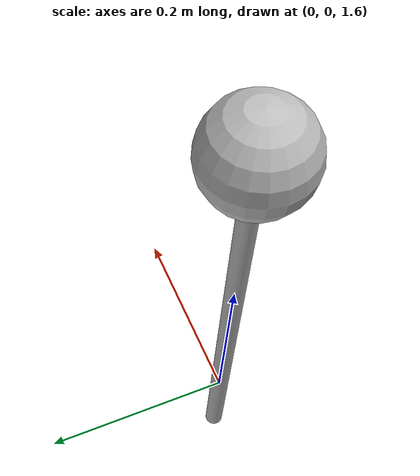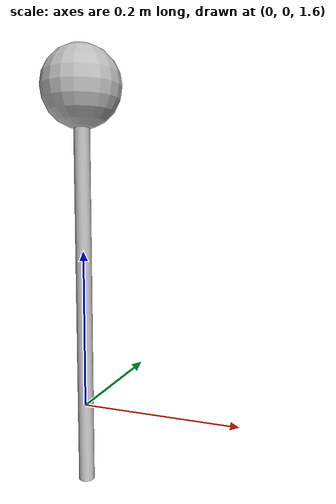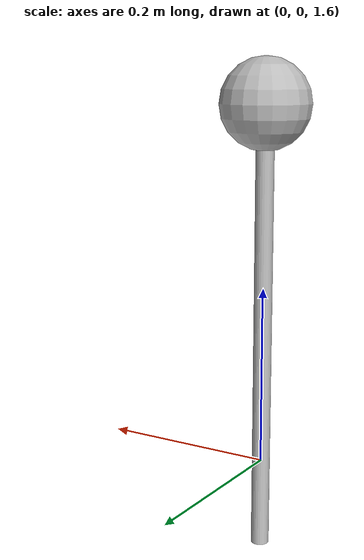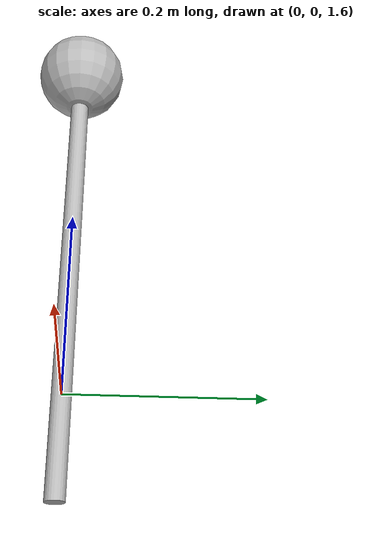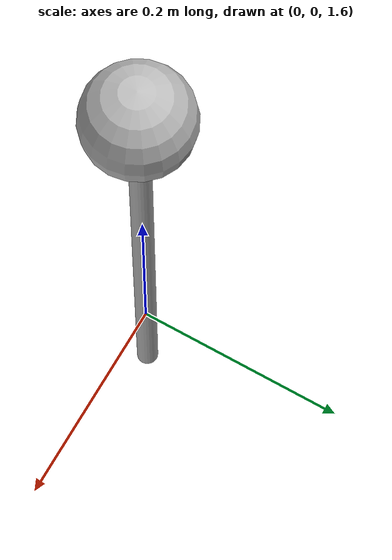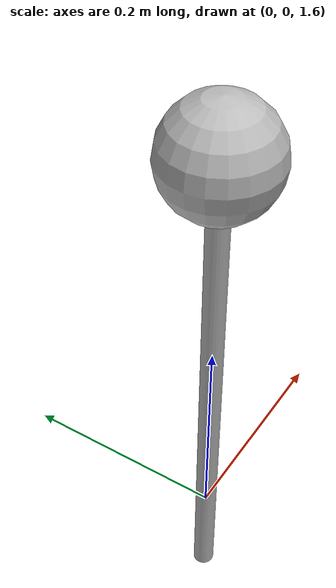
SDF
<?xml version="1.0"?>
<sdf version="1.6">
    <model name="model_1">
      <link name="link_1">
        <pose>0 0 2.0 0 0 0</pose>
        <inertial>
          <inertia>
            <ixx>0.100000</ixx>
            <ixy>0.000000</ixy>
            <ixz>0.000000</ixz>
            <iyy>0.100000</iyy>
            <iyz>0.000000</iyz>
            <izz>0.100000</izz>
          </inertia>
          <mass>5.000000</mass>
        </inertial>
        <visual name="visual_sphere">
          <geometry>
            <sphere>
              <radius>0.050000</radius>
            </sphere>
          </geometry>
        </visual>
        <visual name="visual_cylinder">
          <pose>0 0 -0.25 0 0 0</pose>
          <geometry>
            <cylinder>
              <radius>0.0100000</radius>
              <length>0.5</length>
            </cylinder>
          </geometry>
        </visual>
        <collision name="collision_sphere">
          <max_contacts>250</max_contacts>
          <geometry>
            <sphere>
              <radius>0.050000</radius>
            </sphere>
          </geometry>
        </collision>
      </link>
      <joint name="joint_01" type="ball">
        <parent>world</parent>
        <child>link_1</child>
        <pose>0 0 -0.5 0 0 0</pose>
        <axis>
          <dynamics>
            <damping>1.000000</damping>
            <friction>100.000000</friction>
            <spring_reference>1.000000</spring_reference>
            <spring_stiffness>1.000000</spring_stiffness>
          </dynamics>
          <xyz>1.000000 0.000000 0.000000</xyz>
        </axis>
        <sensor name="force_torque" type="force_torque">
          <update_rate>30</update_rate>
        </sensor>
      </joint>
    </model>
</sdf>
